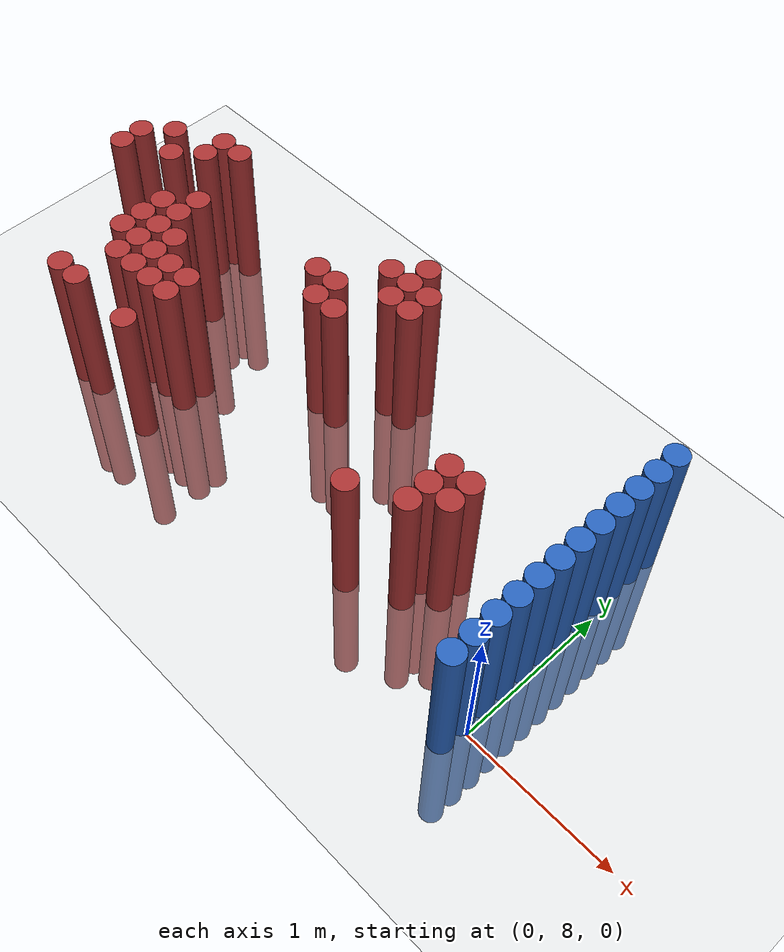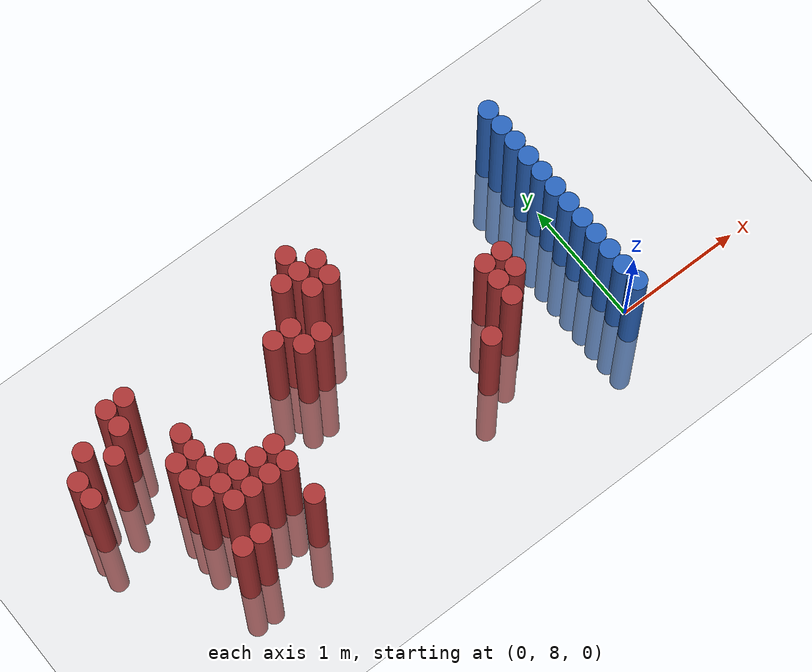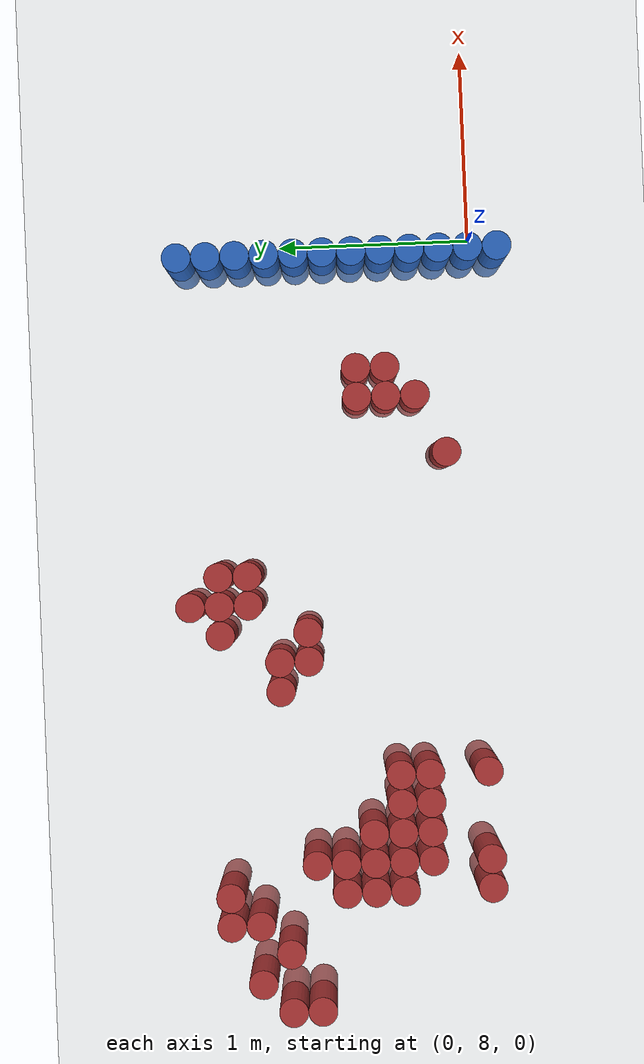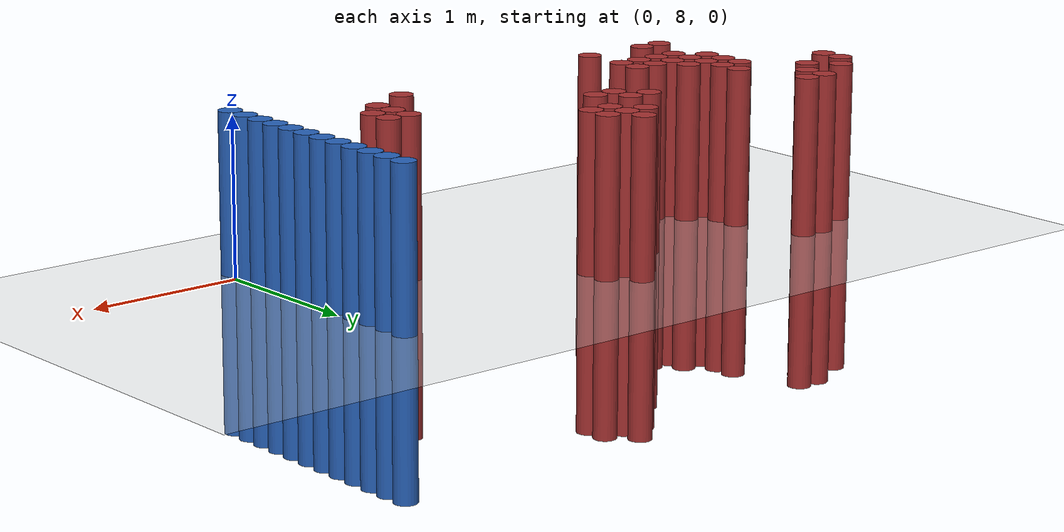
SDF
<sdf version="1.6">
 <world name="default">
  <model name="ground_plane">
   <static>1</static>
   <link name="link">
    <collision name="collision">
     <geometry><plane><normal>0 0 1</normal><size>100 100</size></plane></geometry>
     <surface><friction><ode><mu>100</mu><mu2>50</mu2></ode></friction></surface>
    </collision>
    <visual name="visual">
     <cast_shadows>0</cast_shadows>
     <geometry><plane><normal>0 0 1</normal><size>100 100</size></plane></geometry>
     <material>
      <script><uri>file://media/materials/scripts/gazebo.material</uri><name>Gazebo/Grey</name></script>
     </material>
    </visual>
   </link>
  </model>
  <model name="unit_cylinder_155">
   <static>1</static>
   <pose>-3.975000 8.925000 0.000000 0.000000 0.000000 0.000000</pose>
   <link name="link">
    <inertial>
     <mass>1</mass>
     <inertia><ixx>0.145833</ixx><ixy>0</ixy><ixz>0</ixz><iyy>0.145833</iyy><iyz>0</iyz><izz>0.125</izz></inertia>
    </inertial>
    <collision name="collision">
     <geometry><cylinder><radius>0.075000</radius><length>2</length></cylinder></geometry>
    </collision>
    <visual name="visual">
     <geometry><cylinder><radius>0.075000</radius><length>2</length></cylinder></geometry>
     <material>
      <ambient>0.648000 0.192000 0.192000 1</ambient>
      <diffuse>0.648000 0.192000 0.192000 1</diffuse>
     </material>
     <material>
      <script><name>Gazebo/Grey</name><uri>file://media/materials/scripts/gazebo.material</uri></script>
     </material>
    </visual>
   </link>
  </model>
  <model name="unit_cylinder_156">
   <static>1</static>
   <pose>-3.975000 9.075000 0.000000 0.000000 0.000000 0.000000</pose>
   <link name="link">
    <inertial>
     <mass>1</mass>
     <inertia><ixx>0.145833</ixx><ixy>0</ixy><ixz>0</ixz><iyy>0.145833</iyy><iyz>0</iyz><izz>0.125</izz></inertia>
    </inertial>
    <collision name="collision">
     <geometry><cylinder><radius>0.075000</radius><length>2</length></cylinder></geometry>
    </collision>
    <visual name="visual">
     <geometry><cylinder><radius>0.075000</radius><length>2</length></cylinder></geometry>
     <material>
      <ambient>0.648000 0.192000 0.192000 1</ambient>
      <diffuse>0.648000 0.192000 0.192000 1</diffuse>
     </material>
     <material>
      <script><name>Gazebo/Grey</name><uri>file://media/materials/scripts/gazebo.material</uri></script>
     </material>
    </visual>
   </link>
  </model>
  <model name="unit_cylinder_158">
   <static>1</static>
   <pose>-3.825000 9.225000 0.000000 0.000000 0.000000 0.000000</pose>
   <link name="link">
    <inertial>
     <mass>1</mass>
     <inertia><ixx>0.145833</ixx><ixy>0</ixy><ixz>0</ixz><iyy>0.145833</iyy><iyz>0</iyz><izz>0.125</izz></inertia>
    </inertial>
    <collision name="collision">
     <geometry><cylinder><radius>0.075000</radius><length>2</length></cylinder></geometry>
    </collision>
    <visual name="visual">
     <geometry><cylinder><radius>0.075000</radius><length>2</length></cylinder></geometry>
     <material>
      <ambient>0.648000 0.192000 0.192000 1</ambient>
      <diffuse>0.648000 0.192000 0.192000 1</diffuse>
     </material>
     <material>
      <script><name>Gazebo/Grey</name><uri>file://media/materials/scripts/gazebo.material</uri></script>
     </material>
    </visual>
   </link>
  </model>
  <model name="unit_cylinder_159">
   <static>1</static>
   <pose>-3.675000 9.075000 0.000000 0.000000 0.000000 0.000000</pose>
   <link name="link">
    <inertial>
     <mass>1</mass>
     <inertia><ixx>0.145833</ixx><ixy>0</ixy><ixz>0</ixz><iyy>0.145833</iyy><iyz>0</iyz><izz>0.125</izz></inertia>
    </inertial>
    <collision name="collision">
     <geometry><cylinder><radius>0.075000</radius><length>2</length></cylinder></geometry>
    </collision>
    <visual name="visual">
     <geometry><cylinder><radius>0.075000</radius><length>2</length></cylinder></geometry>
     <material>
      <ambient>0.648000 0.192000 0.192000 1</ambient>
      <diffuse>0.648000 0.192000 0.192000 1</diffuse>
     </material>
     <material>
      <script><name>Gazebo/Grey</name><uri>file://media/materials/scripts/gazebo.material</uri></script>
     </material>
    </visual>
   </link>
  </model>
  <model name="unit_cylinder_160">
   <static>1</static>
   <pose>-3.525000 9.225000 0.000000 0.000000 0.000000 0.000000</pose>
   <link name="link">
    <inertial>
     <mass>1</mass>
     <inertia><ixx>0.145833</ixx><ixy>0</ixy><ixz>0</ixz><iyy>0.145833</iyy><iyz>0</iyz><izz>0.125</izz></inertia>
    </inertial>
    <collision name="collision">
     <geometry><cylinder><radius>0.075000</radius><length>2</length></cylinder></geometry>
    </collision>
    <visual name="visual">
     <geometry><cylinder><radius>0.075000</radius><length>2</length></cylinder></geometry>
     <material>
      <ambient>0.648000 0.192000 0.192000 1</ambient>
      <diffuse>0.648000 0.192000 0.192000 1</diffuse>
     </material>
     <material>
      <script><name>Gazebo/Grey</name><uri>file://media/materials/scripts/gazebo.material</uri></script>
     </material>
    </visual>
   </link>
  </model>
  <model name="unit_cylinder_161">
   <static>1</static>
   <pose>-3.525000 9.375000 0.000000 0.000000 0.000000 0.000000</pose>
   <link name="link">
    <inertial>
     <mass>1</mass>
     <inertia><ixx>0.145833</ixx><ixy>0</ixy><ixz>0</ixz><iyy>0.145833</iyy><iyz>0</iyz><izz>0.125</izz></inertia>
    </inertial>
    <collision name="collision">
     <geometry><cylinder><radius>0.075000</radius><length>2</length></cylinder></geometry>
    </collision>
    <visual name="visual">
     <geometry><cylinder><radius>0.075000</radius><length>2</length></cylinder></geometry>
     <material>
      <ambient>0.648000 0.192000 0.192000 1</ambient>
      <diffuse>0.648000 0.192000 0.192000 1</diffuse>
     </material>
     <material>
      <script><name>Gazebo/Grey</name><uri>file://media/materials/scripts/gazebo.material</uri></script>
     </material>
    </visual>
   </link>
  </model>
  <model name="unit_cylinder_162">
   <static>1</static>
   <pose>-3.375000 8.025000 0.000000 0.000000 0.000000 0.000000</pose>
   <link name="link">
    <inertial>
     <mass>1</mass>
     <inertia><ixx>0.145833</ixx><ixy>0</ixy><ixz>0</ixz><iyy>0.145833</iyy><iyz>0</iyz><izz>0.125</izz></inertia>
    </inertial>
    <collision name="collision">
     <geometry><cylinder><radius>0.075000</radius><length>2</length></cylinder></geometry>
    </collision>
    <visual name="visual">
     <geometry><cylinder><radius>0.075000</radius><length>2</length></cylinder></geometry>
     <material>
      <ambient>0.648000 0.192000 0.192000 1</ambient>
      <diffuse>0.648000 0.192000 0.192000 1</diffuse>
     </material>
     <material>
      <script><name>Gazebo/Grey</name><uri>file://media/materials/scripts/gazebo.material</uri></script>
     </material>
    </visual>
   </link>
  </model>
  <model name="unit_cylinder_163">
   <static>1</static>
   <pose>-3.375000 8.475000 0.000000 0.000000 0.000000 0.000000</pose>
   <link name="link">
    <inertial>
     <mass>1</mass>
     <inertia><ixx>0.145833</ixx><ixy>0</ixy><ixz>0</ixz><iyy>0.145833</iyy><iyz>0</iyz><izz>0.125</izz></inertia>
    </inertial>
    <collision name="collision">
     <geometry><cylinder><radius>0.075000</radius><length>2</length></cylinder></geometry>
    </collision>
    <visual name="visual">
     <geometry><cylinder><radius>0.075000</radius><length>2</length></cylinder></geometry>
     <material>
      <ambient>0.648000 0.192000 0.192000 1</ambient>
      <diffuse>0.648000 0.192000 0.192000 1</diffuse>
     </material>
     <material>
      <script><name>Gazebo/Grey</name><uri>file://media/materials/scripts/gazebo.material</uri></script>
     </material>
    </visual>
   </link>
  </model>
  <model name="unit_cylinder_164">
   <static>1</static>
   <pose>-3.375000 8.625000 0.000000 0.000000 0.000000 0.000000</pose>
   <link name="link">
    <inertial>
     <mass>1</mass>
     <inertia><ixx>0.145833</ixx><ixy>0</ixy><ixz>0</ixz><iyy>0.145833</iyy><iyz>0</iyz><izz>0.125</izz></inertia>
    </inertial>
    <collision name="collision">
     <geometry><cylinder><radius>0.075000</radius><length>2</length></cylinder></geometry>
    </collision>
    <visual name="visual">
     <geometry><cylinder><radius>0.075000</radius><length>2</length></cylinder></geometry>
     <material>
      <ambient>0.648000 0.192000 0.192000 1</ambient>
      <diffuse>0.648000 0.192000 0.192000 1</diffuse>
     </material>
     <material>
      <script><name>Gazebo/Grey</name><uri>file://media/materials/scripts/gazebo.material</uri></script>
     </material>
    </visual>
   </link>
  </model>
  <model name="unit_cylinder_165">
   <static>1</static>
   <pose>-3.375000 8.775000 0.000000 0.000000 0.000000 0.000000</pose>
   <link name="link">
    <inertial>
     <mass>1</mass>
     <inertia><ixx>0.145833</ixx><ixy>0</ixy><ixz>0</ixz><iyy>0.145833</iyy><iyz>0</iyz><izz>0.125</izz></inertia>
    </inertial>
    <collision name="collision">
     <geometry><cylinder><radius>0.075000</radius><length>2</length></cylinder></geometry>
    </collision>
    <visual name="visual">
     <geometry><cylinder><radius>0.075000</radius><length>2</length></cylinder></geometry>
     <material>
      <ambient>0.648000 0.192000 0.192000 1</ambient>
      <diffuse>0.648000 0.192000 0.192000 1</diffuse>
     </material>
     <material>
      <script><name>Gazebo/Grey</name><uri>file://media/materials/scripts/gazebo.material</uri></script>
     </material>
    </visual>
   </link>
  </model>
  <model name="unit_cylinder_166">
   <static>1</static>
   <pose>-3.375000 9.375000 0.000000 0.000000 0.000000 0.000000</pose>
   <link name="link">
    <inertial>
     <mass>1</mass>
     <inertia><ixx>0.145833</ixx><ixy>0</ixy><ixz>0</ixz><iyy>0.145833</iyy><iyz>0</iyz><izz>0.125</izz></inertia>
    </inertial>
    <collision name="collision">
     <geometry><cylinder><radius>0.075000</radius><length>2</length></cylinder></geometry>
    </collision>
    <visual name="visual">
     <geometry><cylinder><radius>0.075000</radius><length>2</length></cylinder></geometry>
     <material>
      <ambient>0.648000 0.192000 0.192000 1</ambient>
      <diffuse>0.648000 0.192000 0.192000 1</diffuse>
     </material>
     <material>
      <script><name>Gazebo/Grey</name><uri>file://media/materials/scripts/gazebo.material</uri></script>
     </material>
    </visual>
   </link>
  </model>
  <model name="unit_cylinder_168">
   <static>1</static>
   <pose>-3.225000 8.025000 0.000000 0.000000 0.000000 0.000000</pose>
   <link name="link">
    <inertial>
     <mass>1</mass>
     <inertia><ixx>0.145833</ixx><ixy>0</ixy><ixz>0</ixz><iyy>0.145833</iyy><iyz>0</iyz><izz>0.125</izz></inertia>
    </inertial>
    <collision name="collision">
     <geometry><cylinder><radius>0.075000</radius><length>2</length></cylinder></geometry>
    </collision>
    <visual name="visual">
     <geometry><cylinder><radius>0.075000</radius><length>2</length></cylinder></geometry>
     <material>
      <ambient>0.648000 0.192000 0.192000 1</ambient>
      <diffuse>0.648000 0.192000 0.192000 1</diffuse>
     </material>
     <material>
      <script><name>Gazebo/Grey</name><uri>file://media/materials/scripts/gazebo.material</uri></script>
     </material>
    </visual>
   </link>
  </model>
  <model name="unit_cylinder_169">
   <static>1</static>
   <pose>-3.225000 8.325000 0.000000 0.000000 0.000000 0.000000</pose>
   <link name="link">
    <inertial>
     <mass>1</mass>
     <inertia><ixx>0.145833</ixx><ixy>0</ixy><ixz>0</ixz><iyy>0.145833</iyy><iyz>0</iyz><izz>0.125</izz></inertia>
    </inertial>
    <collision name="collision">
     <geometry><cylinder><radius>0.075000</radius><length>2</length></cylinder></geometry>
    </collision>
    <visual name="visual">
     <geometry><cylinder><radius>0.075000</radius><length>2</length></cylinder></geometry>
     <material>
      <ambient>0.648000 0.192000 0.192000 1</ambient>
      <diffuse>0.648000 0.192000 0.192000 1</diffuse>
     </material>
     <material>
      <script><name>Gazebo/Grey</name><uri>file://media/materials/scripts/gazebo.material</uri></script>
     </material>
    </visual>
   </link>
  </model>
  <model name="unit_cylinder_170">
   <static>1</static>
   <pose>-3.225000 8.475000 0.000000 0.000000 0.000000 0.000000</pose>
   <link name="link">
    <inertial>
     <mass>1</mass>
     <inertia><ixx>0.145833</ixx><ixy>0</ixy><ixz>0</ixz><iyy>0.145833</iyy><iyz>0</iyz><izz>0.125</izz></inertia>
    </inertial>
    <collision name="collision">
     <geometry><cylinder><radius>0.075000</radius><length>2</length></cylinder></geometry>
    </collision>
    <visual name="visual">
     <geometry><cylinder><radius>0.075000</radius><length>2</length></cylinder></geometry>
     <material>
      <ambient>0.648000 0.192000 0.192000 1</ambient>
      <diffuse>0.648000 0.192000 0.192000 1</diffuse>
     </material>
     <material>
      <script><name>Gazebo/Grey</name><uri>file://media/materials/scripts/gazebo.material</uri></script>
     </material>
    </visual>
   </link>
  </model>
  <model name="unit_cylinder_171">
   <static>1</static>
   <pose>-3.225000 8.625000 0.000000 0.000000 0.000000 0.000000</pose>
   <link name="link">
    <inertial>
     <mass>1</mass>
     <inertia><ixx>0.145833</ixx><ixy>0</ixy><ixz>0</ixz><iyy>0.145833</iyy><iyz>0</iyz><izz>0.125</izz></inertia>
    </inertial>
    <collision name="collision">
     <geometry><cylinder><radius>0.075000</radius><length>2</length></cylinder></geometry>
    </collision>
    <visual name="visual">
     <geometry><cylinder><radius>0.075000</radius><length>2</length></cylinder></geometry>
     <material>
      <ambient>0.648000 0.192000 0.192000 1</ambient>
      <diffuse>0.648000 0.192000 0.192000 1</diffuse>
     </material>
     <material>
      <script><name>Gazebo/Grey</name><uri>file://media/materials/scripts/gazebo.material</uri></script>
     </material>
    </visual>
   </link>
  </model>
  <model name="unit_cylinder_172">
   <static>1</static>
   <pose>-3.225000 8.775000 0.000000 0.000000 0.000000 0.000000</pose>
   <link name="link">
    <inertial>
     <mass>1</mass>
     <inertia><ixx>0.145833</ixx><ixy>0</ixy><ixz>0</ixz><iyy>0.145833</iyy><iyz>0</iyz><izz>0.125</izz></inertia>
    </inertial>
    <collision name="collision">
     <geometry><cylinder><radius>0.075000</radius><length>2</length></cylinder></geometry>
    </collision>
    <visual name="visual">
     <geometry><cylinder><radius>0.075000</radius><length>2</length></cylinder></geometry>
     <material>
      <ambient>0.648000 0.192000 0.192000 1</ambient>
      <diffuse>0.648000 0.192000 0.192000 1</diffuse>
     </material>
     <material>
      <script><name>Gazebo/Grey</name><uri>file://media/materials/scripts/gazebo.material</uri></script>
     </material>
    </visual>
   </link>
  </model>
  <model name="unit_cylinder_173">
   <static>1</static>
   <pose>-3.225000 8.925000 0.000000 0.000000 0.000000 0.000000</pose>
   <link name="link">
    <inertial>
     <mass>1</mass>
     <inertia><ixx>0.145833</ixx><ixy>0</ixy><ixz>0</ixz><iyy>0.145833</iyy><iyz>0</iyz><izz>0.125</izz></inertia>
    </inertial>
    <collision name="collision">
     <geometry><cylinder><radius>0.075000</radius><length>2</length></cylinder></geometry>
    </collision>
    <visual name="visual">
     <geometry><cylinder><radius>0.075000</radius><length>2</length></cylinder></geometry>
     <material>
      <ambient>0.648000 0.192000 0.192000 1</ambient>
      <diffuse>0.648000 0.192000 0.192000 1</diffuse>
     </material>
     <material>
      <script><name>Gazebo/Grey</name><uri>file://media/materials/scripts/gazebo.material</uri></script>
     </material>
    </visual>
   </link>
  </model>
  <model name="unit_cylinder_175">
   <static>1</static>
   <pose>-3.075000 8.325000 0.000000 0.000000 0.000000 0.000000</pose>
   <link name="link">
    <inertial>
     <mass>1</mass>
     <inertia><ixx>0.145833</ixx><ixy>0</ixy><ixz>0</ixz><iyy>0.145833</iyy><iyz>0</iyz><izz>0.125</izz></inertia>
    </inertial>
    <collision name="collision">
     <geometry><cylinder><radius>0.075000</radius><length>2</length></cylinder></geometry>
    </collision>
    <visual name="visual">
     <geometry><cylinder><radius>0.075000</radius><length>2</length></cylinder></geometry>
     <material>
      <ambient>0.648000 0.192000 0.192000 1</ambient>
      <diffuse>0.648000 0.192000 0.192000 1</diffuse>
     </material>
     <material>
      <script><name>Gazebo/Grey</name><uri>file://media/materials/scripts/gazebo.material</uri></script>
     </material>
    </visual>
   </link>
  </model>
  <model name="unit_cylinder_176">
   <static>1</static>
   <pose>-3.075000 8.475000 0.000000 0.000000 0.000000 0.000000</pose>
   <link name="link">
    <inertial>
     <mass>1</mass>
     <inertia><ixx>0.145833</ixx><ixy>0</ixy><ixz>0</ixz><iyy>0.145833</iyy><iyz>0</iyz><izz>0.125</izz></inertia>
    </inertial>
    <collision name="collision">
     <geometry><cylinder><radius>0.075000</radius><length>2</length></cylinder></geometry>
    </collision>
    <visual name="visual">
     <geometry><cylinder><radius>0.075000</radius><length>2</length></cylinder></geometry>
     <material>
      <ambient>0.648000 0.192000 0.192000 1</ambient>
      <diffuse>0.648000 0.192000 0.192000 1</diffuse>
     </material>
     <material>
      <script><name>Gazebo/Grey</name><uri>file://media/materials/scripts/gazebo.material</uri></script>
     </material>
    </visual>
   </link>
  </model>
  <model name="unit_cylinder_177">
   <static>1</static>
   <pose>-3.075000 8.625000 0.000000 0.000000 0.000000 0.000000</pose>
   <link name="link">
    <inertial>
     <mass>1</mass>
     <inertia><ixx>0.145833</ixx><ixy>0</ixy><ixz>0</ixz><iyy>0.145833</iyy><iyz>0</iyz><izz>0.125</izz></inertia>
    </inertial>
    <collision name="collision">
     <geometry><cylinder><radius>0.075000</radius><length>2</length></cylinder></geometry>
    </collision>
    <visual name="visual">
     <geometry><cylinder><radius>0.075000</radius><length>2</length></cylinder></geometry>
     <material>
      <ambient>0.648000 0.192000 0.192000 1</ambient>
      <diffuse>0.648000 0.192000 0.192000 1</diffuse>
     </material>
     <material>
      <script><name>Gazebo/Grey</name><uri>file://media/materials/scripts/gazebo.material</uri></script>
     </material>
    </visual>
   </link>
  </model>
  <model name="unit_cylinder_180">
   <static>1</static>
   <pose>-2.925000 8.325000 0.000000 0.000000 0.000000 0.000000</pose>
   <link name="link">
    <inertial>
     <mass>1</mass>
     <inertia><ixx>0.145833</ixx><ixy>0</ixy><ixz>0</ixz><iyy>0.145833</iyy><iyz>0</iyz><izz>0.125</izz></inertia>
    </inertial>
    <collision name="collision">
     <geometry><cylinder><radius>0.075000</radius><length>2</length></cylinder></geometry>
    </collision>
    <visual name="visual">
     <geometry><cylinder><radius>0.075000</radius><length>2</length></cylinder></geometry>
     <material>
      <ambient>0.648000 0.192000 0.192000 1</ambient>
      <diffuse>0.648000 0.192000 0.192000 1</diffuse>
     </material>
     <material>
      <script><name>Gazebo/Grey</name><uri>file://media/materials/scripts/gazebo.material</uri></script>
     </material>
    </visual>
   </link>
  </model>
  <model name="unit_cylinder_181">
   <static>1</static>
   <pose>-2.925000 8.475000 0.000000 0.000000 0.000000 0.000000</pose>
   <link name="link">
    <inertial>
     <mass>1</mass>
     <inertia><ixx>0.145833</ixx><ixy>0</ixy><ixz>0</ixz><iyy>0.145833</iyy><iyz>0</iyz><izz>0.125</izz></inertia>
    </inertial>
    <collision name="collision">
     <geometry><cylinder><radius>0.075000</radius><length>2</length></cylinder></geometry>
    </collision>
    <visual name="visual">
     <geometry><cylinder><radius>0.075000</radius><length>2</length></cylinder></geometry>
     <material>
      <ambient>0.648000 0.192000 0.192000 1</ambient>
      <diffuse>0.648000 0.192000 0.192000 1</diffuse>
     </material>
     <material>
      <script><name>Gazebo/Grey</name><uri>file://media/materials/scripts/gazebo.material</uri></script>
     </material>
    </visual>
   </link>
  </model>
  <model name="unit_cylinder_187">
   <static>1</static>
   <pose>-2.775000 8.025000 0.000000 0.000000 0.000000 0.000000</pose>
   <link name="link">
    <inertial>
     <mass>1</mass>
     <inertia><ixx>0.145833</ixx><ixy>0</ixy><ixz>0</ixz><iyy>0.145833</iyy><iyz>0</iyz><izz>0.125</izz></inertia>
    </inertial>
    <collision name="collision">
     <geometry><cylinder><radius>0.075000</radius><length>2</length></cylinder></geometry>
    </collision>
    <visual name="visual">
     <geometry><cylinder><radius>0.075000</radius><length>2</length></cylinder></geometry>
     <material>
      <ambient>0.648000 0.192000 0.192000 1</ambient>
      <diffuse>0.648000 0.192000 0.192000 1</diffuse>
     </material>
     <material>
      <script><name>Gazebo/Grey</name><uri>file://media/materials/scripts/gazebo.material</uri></script>
     </material>
    </visual>
   </link>
  </model>
  <model name="unit_cylinder_188">
   <static>1</static>
   <pose>-2.775000 8.325000 0.000000 0.000000 0.000000 0.000000</pose>
   <link name="link">
    <inertial>
     <mass>1</mass>
     <inertia><ixx>0.145833</ixx><ixy>0</ixy><ixz>0</ixz><iyy>0.145833</iyy><iyz>0</iyz><izz>0.125</izz></inertia>
    </inertial>
    <collision name="collision">
     <geometry><cylinder><radius>0.075000</radius><length>2</length></cylinder></geometry>
    </collision>
    <visual name="visual">
     <geometry><cylinder><radius>0.075000</radius><length>2</length></cylinder></geometry>
     <material>
      <ambient>0.648000 0.192000 0.192000 1</ambient>
      <diffuse>0.648000 0.192000 0.192000 1</diffuse>
     </material>
     <material>
      <script><name>Gazebo/Grey</name><uri>file://media/materials/scripts/gazebo.material</uri></script>
     </material>
    </visual>
   </link>
  </model>
  <model name="unit_cylinder_189">
   <static>1</static>
   <pose>-2.775000 8.475000 0.000000 0.000000 0.000000 0.000000</pose>
   <link name="link">
    <inertial>
     <mass>1</mass>
     <inertia><ixx>0.145833</ixx><ixy>0</ixy><ixz>0</ixz><iyy>0.145833</iyy><iyz>0</iyz><izz>0.125</izz></inertia>
    </inertial>
    <collision name="collision">
     <geometry><cylinder><radius>0.075000</radius><length>2</length></cylinder></geometry>
    </collision>
    <visual name="visual">
     <geometry><cylinder><radius>0.075000</radius><length>2</length></cylinder></geometry>
     <material>
      <ambient>0.648000 0.192000 0.192000 1</ambient>
      <diffuse>0.648000 0.192000 0.192000 1</diffuse>
     </material>
     <material>
      <script><name>Gazebo/Grey</name><uri>file://media/materials/scripts/gazebo.material</uri></script>
     </material>
    </visual>
   </link>
  </model>
  <model name="unit_cylinder_201">
   <static>1</static>
   <pose>-2.325000 9.075000 0.000000 0.000000 0.000000 0.000000</pose>
   <link name="link">
    <inertial>
     <mass>1</mass>
     <inertia><ixx>0.145833</ixx><ixy>0</ixy><ixz>0</ixz><iyy>0.145833</iyy><iyz>0</iyz><izz>0.125</izz></inertia>
    </inertial>
    <collision name="collision">
     <geometry><cylinder><radius>0.075000</radius><length>2</length></cylinder></geometry>
    </collision>
    <visual name="visual">
     <geometry><cylinder><radius>0.075000</radius><length>2</length></cylinder></geometry>
     <material>
      <ambient>0.648000 0.192000 0.192000 1</ambient>
      <diffuse>0.648000 0.192000 0.192000 1</diffuse>
     </material>
     <material>
      <script><name>Gazebo/Grey</name><uri>file://media/materials/scripts/gazebo.material</uri></script>
     </material>
    </visual>
   </link>
  </model>
  <model name="unit_cylinder_204">
   <static>1</static>
   <pose>-2.175000 8.925000 0.000000 0.000000 0.000000 0.000000</pose>
   <link name="link">
    <inertial>
     <mass>1</mass>
     <inertia><ixx>0.145833</ixx><ixy>0</ixy><ixz>0</ixz><iyy>0.145833</iyy><iyz>0</iyz><izz>0.125</izz></inertia>
    </inertial>
    <collision name="collision">
     <geometry><cylinder><radius>0.075000</radius><length>2</length></cylinder></geometry>
    </collision>
    <visual name="visual">
     <geometry><cylinder><radius>0.075000</radius><length>2</length></cylinder></geometry>
     <material>
      <ambient>0.648000 0.192000 0.192000 1</ambient>
      <diffuse>0.648000 0.192000 0.192000 1</diffuse>
     </material>
     <material>
      <script><name>Gazebo/Grey</name><uri>file://media/materials/scripts/gazebo.material</uri></script>
     </material>
    </visual>
   </link>
  </model>
  <model name="unit_cylinder_205">
   <static>1</static>
   <pose>-2.175000 9.075000 0.000000 0.000000 0.000000 0.000000</pose>
   <link name="link">
    <inertial>
     <mass>1</mass>
     <inertia><ixx>0.145833</ixx><ixy>0</ixy><ixz>0</ixz><iyy>0.145833</iyy><iyz>0</iyz><izz>0.125</izz></inertia>
    </inertial>
    <collision name="collision">
     <geometry><cylinder><radius>0.075000</radius><length>2</length></cylinder></geometry>
    </collision>
    <visual name="visual">
     <geometry><cylinder><radius>0.075000</radius><length>2</length></cylinder></geometry>
     <material>
      <ambient>0.648000 0.192000 0.192000 1</ambient>
      <diffuse>0.648000 0.192000 0.192000 1</diffuse>
     </material>
     <material>
      <script><name>Gazebo/Grey</name><uri>file://media/materials/scripts/gazebo.material</uri></script>
     </material>
    </visual>
   </link>
  </model>
  <model name="unit_cylinder_207">
   <static>1</static>
   <pose>-2.025000 8.925000 0.000000 0.000000 0.000000 0.000000</pose>
   <link name="link">
    <inertial>
     <mass>1</mass>
     <inertia><ixx>0.145833</ixx><ixy>0</ixy><ixz>0</ixz><iyy>0.145833</iyy><iyz>0</iyz><izz>0.125</izz></inertia>
    </inertial>
    <collision name="collision">
     <geometry><cylinder><radius>0.075000</radius><length>2</length></cylinder></geometry>
    </collision>
    <visual name="visual">
     <geometry><cylinder><radius>0.075000</radius><length>2</length></cylinder></geometry>
     <material>
      <ambient>0.648000 0.192000 0.192000 1</ambient>
      <diffuse>0.648000 0.192000 0.192000 1</diffuse>
     </material>
     <material>
      <script><name>Gazebo/Grey</name><uri>file://media/materials/scripts/gazebo.material</uri></script>
     </material>
    </visual>
   </link>
  </model>
  <model name="unit_cylinder_208">
   <static>1</static>
   <pose>-2.025000 9.375000 0.000000 0.000000 0.000000 0.000000</pose>
   <link name="link">
    <inertial>
     <mass>1</mass>
     <inertia><ixx>0.145833</ixx><ixy>0</ixy><ixz>0</ixz><iyy>0.145833</iyy><iyz>0</iyz><izz>0.125</izz></inertia>
    </inertial>
    <collision name="collision">
     <geometry><cylinder><radius>0.075000</radius><length>2</length></cylinder></geometry>
    </collision>
    <visual name="visual">
     <geometry><cylinder><radius>0.075000</radius><length>2</length></cylinder></geometry>
     <material>
      <ambient>0.648000 0.192000 0.192000 1</ambient>
      <diffuse>0.648000 0.192000 0.192000 1</diffuse>
     </material>
     <material>
      <script><name>Gazebo/Grey</name><uri>file://media/materials/scripts/gazebo.material</uri></script>
     </material>
    </visual>
   </link>
  </model>
  <model name="unit_cylinder_209">
   <static>1</static>
   <pose>-1.875000 9.225000 0.000000 0.000000 0.000000 0.000000</pose>
   <link name="link">
    <inertial>
     <mass>1</mass>
     <inertia><ixx>0.145833</ixx><ixy>0</ixy><ixz>0</ixz><iyy>0.145833</iyy><iyz>0</iyz><izz>0.125</izz></inertia>
    </inertial>
    <collision name="collision">
     <geometry><cylinder><radius>0.075000</radius><length>2</length></cylinder></geometry>
    </collision>
    <visual name="visual">
     <geometry><cylinder><radius>0.075000</radius><length>2</length></cylinder></geometry>
     <material>
      <ambient>0.648000 0.192000 0.192000 1</ambient>
      <diffuse>0.648000 0.192000 0.192000 1</diffuse>
     </material>
     <material>
      <script><name>Gazebo/Grey</name><uri>file://media/materials/scripts/gazebo.material</uri></script>
     </material>
    </visual>
   </link>
  </model>
  <model name="unit_cylinder_210">
   <static>1</static>
   <pose>-1.875000 9.375000 0.000000 0.000000 0.000000 0.000000</pose>
   <link name="link">
    <inertial>
     <mass>1</mass>
     <inertia><ixx>0.145833</ixx><ixy>0</ixy><ixz>0</ixz><iyy>0.145833</iyy><iyz>0</iyz><izz>0.125</izz></inertia>
    </inertial>
    <collision name="collision">
     <geometry><cylinder><radius>0.075000</radius><length>2</length></cylinder></geometry>
    </collision>
    <visual name="visual">
     <geometry><cylinder><radius>0.075000</radius><length>2</length></cylinder></geometry>
     <material>
      <ambient>0.648000 0.192000 0.192000 1</ambient>
      <diffuse>0.648000 0.192000 0.192000 1</diffuse>
     </material>
     <material>
      <script><name>Gazebo/Grey</name><uri>file://media/materials/scripts/gazebo.material</uri></script>
     </material>
    </visual>
   </link>
  </model>
  <model name="unit_cylinder_211">
   <static>1</static>
   <pose>-1.875000 9.525000 0.000000 0.000000 0.000000 0.000000</pose>
   <link name="link">
    <inertial>
     <mass>1</mass>
     <inertia><ixx>0.145833</ixx><ixy>0</ixy><ixz>0</ixz><iyy>0.145833</iyy><iyz>0</iyz><izz>0.125</izz></inertia>
    </inertial>
    <collision name="collision">
     <geometry><cylinder><radius>0.075000</radius><length>2</length></cylinder></geometry>
    </collision>
    <visual name="visual">
     <geometry><cylinder><radius>0.075000</radius><length>2</length></cylinder></geometry>
     <material>
      <ambient>0.648000 0.192000 0.192000 1</ambient>
      <diffuse>0.648000 0.192000 0.192000 1</diffuse>
     </material>
     <material>
      <script><name>Gazebo/Grey</name><uri>file://media/materials/scripts/gazebo.material</uri></script>
     </material>
    </visual>
   </link>
  </model>
  <model name="unit_cylinder_213">
   <static>1</static>
   <pose>-1.725000 9.225000 0.000000 0.000000 0.000000 0.000000</pose>
   <link name="link">
    <inertial>
     <mass>1</mass>
     <inertia><ixx>0.145833</ixx><ixy>0</ixy><ixz>0</ixz><iyy>0.145833</iyy><iyz>0</iyz><izz>0.125</izz></inertia>
    </inertial>
    <collision name="collision">
     <geometry><cylinder><radius>0.075000</radius><length>2</length></cylinder></geometry>
    </collision>
    <visual name="visual">
     <geometry><cylinder><radius>0.075000</radius><length>2</length></cylinder></geometry>
     <material>
      <ambient>0.648000 0.192000 0.192000 1</ambient>
      <diffuse>0.648000 0.192000 0.192000 1</diffuse>
     </material>
     <material>
      <script><name>Gazebo/Grey</name><uri>file://media/materials/scripts/gazebo.material</uri></script>
     </material>
    </visual>
   </link>
  </model>
  <model name="unit_cylinder_214">
   <static>1</static>
   <pose>-1.725000 9.375000 0.000000 0.000000 0.000000 0.000000</pose>
   <link name="link">
    <inertial>
     <mass>1</mass>
     <inertia><ixx>0.145833</ixx><ixy>0</ixy><ixz>0</ixz><iyy>0.145833</iyy><iyz>0</iyz><izz>0.125</izz></inertia>
    </inertial>
    <collision name="collision">
     <geometry><cylinder><radius>0.075000</radius><length>2</length></cylinder></geometry>
    </collision>
    <visual name="visual">
     <geometry><cylinder><radius>0.075000</radius><length>2</length></cylinder></geometry>
     <material>
      <ambient>0.648000 0.192000 0.192000 1</ambient>
      <diffuse>0.648000 0.192000 0.192000 1</diffuse>
     </material>
     <material>
      <script><name>Gazebo/Grey</name><uri>file://media/materials/scripts/gazebo.material</uri></script>
     </material>
    </visual>
   </link>
  </model>
  <model name="unit_cylinder_219">
   <static>1</static>
   <pose>-1.125000 8.175000 0.000000 0.000000 0.000000 0.000000</pose>
   <link name="link">
    <inertial>
     <mass>1</mass>
     <inertia><ixx>0.145833</ixx><ixy>0</ixy><ixz>0</ixz><iyy>0.145833</iyy><iyz>0</iyz><izz>0.125</izz></inertia>
    </inertial>
    <collision name="collision">
     <geometry><cylinder><radius>0.075000</radius><length>2</length></cylinder></geometry>
    </collision>
    <visual name="visual">
     <geometry><cylinder><radius>0.075000</radius><length>2</length></cylinder></geometry>
     <material>
      <ambient>0.648000 0.192000 0.192000 1</ambient>
      <diffuse>0.648000 0.192000 0.192000 1</diffuse>
     </material>
     <material>
      <script><name>Gazebo/Grey</name><uri>file://media/materials/scripts/gazebo.material</uri></script>
     </material>
    </visual>
   </link>
  </model>
  <model name="unit_cylinder_221">
   <static>1</static>
   <pose>-0.825000 8.325000 0.000000 0.000000 0.000000 0.000000</pose>
   <link name="link">
    <inertial>
     <mass>1</mass>
     <inertia><ixx>0.145833</ixx><ixy>0</ixy><ixz>0</ixz><iyy>0.145833</iyy><iyz>0</iyz><izz>0.125</izz></inertia>
    </inertial>
    <collision name="collision">
     <geometry><cylinder><radius>0.075000</radius><length>2</length></cylinder></geometry>
    </collision>
    <visual name="visual">
     <geometry><cylinder><radius>0.075000</radius><length>2</length></cylinder></geometry>
     <material>
      <ambient>0.648000 0.192000 0.192000 1</ambient>
      <diffuse>0.648000 0.192000 0.192000 1</diffuse>
     </material>
     <material>
      <script><name>Gazebo/Grey</name><uri>file://media/materials/scripts/gazebo.material</uri></script>
     </material>
    </visual>
   </link>
  </model>
  <model name="unit_cylinder_222">
   <static>1</static>
   <pose>-0.825000 8.475000 0.000000 0.000000 0.000000 0.000000</pose>
   <link name="link">
    <inertial>
     <mass>1</mass>
     <inertia><ixx>0.145833</ixx><ixy>0</ixy><ixz>0</ixz><iyy>0.145833</iyy><iyz>0</iyz><izz>0.125</izz></inertia>
    </inertial>
    <collision name="collision">
     <geometry><cylinder><radius>0.075000</radius><length>2</length></cylinder></geometry>
    </collision>
    <visual name="visual">
     <geometry><cylinder><radius>0.075000</radius><length>2</length></cylinder></geometry>
     <material>
      <ambient>0.648000 0.192000 0.192000 1</ambient>
      <diffuse>0.648000 0.192000 0.192000 1</diffuse>
     </material>
     <material>
      <script><name>Gazebo/Grey</name><uri>file://media/materials/scripts/gazebo.material</uri></script>
     </material>
    </visual>
   </link>
  </model>
  <model name="unit_cylinder_223">
   <static>1</static>
   <pose>-0.825000 8.625000 0.000000 0.000000 0.000000 0.000000</pose>
   <link name="link">
    <inertial>
     <mass>1</mass>
     <inertia><ixx>0.145833</ixx><ixy>0</ixy><ixz>0</ixz><iyy>0.145833</iyy><iyz>0</iyz><izz>0.125</izz></inertia>
    </inertial>
    <collision name="collision">
     <geometry><cylinder><radius>0.075000</radius><length>2</length></cylinder></geometry>
    </collision>
    <visual name="visual">
     <geometry><cylinder><radius>0.075000</radius><length>2</length></cylinder></geometry>
     <material>
      <ambient>0.648000 0.192000 0.192000 1</ambient>
      <diffuse>0.648000 0.192000 0.192000 1</diffuse>
     </material>
     <material>
      <script><name>Gazebo/Grey</name><uri>file://media/materials/scripts/gazebo.material</uri></script>
     </material>
    </visual>
   </link>
  </model>
  <model name="unit_cylinder_226">
   <static>1</static>
   <pose>-0.675000 8.475000 0.000000 0.000000 0.000000 0.000000</pose>
   <link name="link">
    <inertial>
     <mass>1</mass>
     <inertia><ixx>0.145833</ixx><ixy>0</ixy><ixz>0</ixz><iyy>0.145833</iyy><iyz>0</iyz><izz>0.125</izz></inertia>
    </inertial>
    <collision name="collision">
     <geometry><cylinder><radius>0.075000</radius><length>2</length></cylinder></geometry>
    </collision>
    <visual name="visual">
     <geometry><cylinder><radius>0.075000</radius><length>2</length></cylinder></geometry>
     <material>
      <ambient>0.648000 0.192000 0.192000 1</ambient>
      <diffuse>0.648000 0.192000 0.192000 1</diffuse>
     </material>
     <material>
      <script><name>Gazebo/Grey</name><uri>file://media/materials/scripts/gazebo.material</uri></script>
     </material>
    </visual>
   </link>
  </model>
  <model name="unit_cylinder_227">
   <static>1</static>
   <pose>-0.675000 8.625000 0.000000 0.000000 0.000000 0.000000</pose>
   <link name="link">
    <inertial>
     <mass>1</mass>
     <inertia><ixx>0.145833</ixx><ixy>0</ixy><ixz>0</ixz><iyy>0.145833</iyy><iyz>0</iyz><izz>0.125</izz></inertia>
    </inertial>
    <collision name="collision">
     <geometry><cylinder><radius>0.075000</radius><length>2</length></cylinder></geometry>
    </collision>
    <visual name="visual">
     <geometry><cylinder><radius>0.075000</radius><length>2</length></cylinder></geometry>
     <material>
      <ambient>0.648000 0.192000 0.192000 1</ambient>
      <diffuse>0.648000 0.192000 0.192000 1</diffuse>
     </material>
     <material>
      <script><name>Gazebo/Grey</name><uri>file://media/materials/scripts/gazebo.material</uri></script>
     </material>
    </visual>
   </link>
  </model>
  <model name="unit_cylinder_252">
   <static>1</static>
   <pose>-0.075000 7.875000 0.000000 0.000000 0.000000 0.000000</pose>
   <link name="link">
    <inertial>
     <mass>1</mass>
     <inertia><ixx>0.145833</ixx><ixy>0</ixy><ixz>0</ixz><iyy>0.145833</iyy><iyz>0</iyz><izz>0.125</izz></inertia>
    </inertial>
    <collision name="collision">
     <geometry><cylinder><radius>0.075000</radius><length>2</length></cylinder></geometry>
    </collision>
    <visual name="visual">
     <geometry><cylinder><radius>0.075000</radius><length>2</length></cylinder></geometry>
     <material>
      <ambient>0.152000 0.379000 0.720000 1</ambient>
      <diffuse>0.152000 0.379000 0.720000 1</diffuse>
     </material>
     <material>
      <script><name>Gazebo/Grey</name><uri>file://media/materials/scripts/gazebo.material</uri></script>
     </material>
    </visual>
   </link>
  </model>
  <model name="unit_cylinder_253">
   <static>1</static>
   <pose>-0.075000 8.025000 0.000000 0.000000 0.000000 0.000000</pose>
   <link name="link">
    <inertial>
     <mass>1</mass>
     <inertia><ixx>0.145833</ixx><ixy>0</ixy><ixz>0</ixz><iyy>0.145833</iyy><iyz>0</iyz><izz>0.125</izz></inertia>
    </inertial>
    <collision name="collision">
     <geometry><cylinder><radius>0.075000</radius><length>2</length></cylinder></geometry>
    </collision>
    <visual name="visual">
     <geometry><cylinder><radius>0.075000</radius><length>2</length></cylinder></geometry>
     <material>
      <ambient>0.152000 0.379000 0.720000 1</ambient>
      <diffuse>0.152000 0.379000 0.720000 1</diffuse>
     </material>
     <material>
      <script><name>Gazebo/Grey</name><uri>file://media/materials/scripts/gazebo.material</uri></script>
     </material>
    </visual>
   </link>
  </model>
  <model name="unit_cylinder_254">
   <static>1</static>
   <pose>-0.075000 8.175000 0.000000 0.000000 0.000000 0.000000</pose>
   <link name="link">
    <inertial>
     <mass>1</mass>
     <inertia><ixx>0.145833</ixx><ixy>0</ixy><ixz>0</ixz><iyy>0.145833</iyy><iyz>0</iyz><izz>0.125</izz></inertia>
    </inertial>
    <collision name="collision">
     <geometry><cylinder><radius>0.075000</radius><length>2</length></cylinder></geometry>
    </collision>
    <visual name="visual">
     <geometry><cylinder><radius>0.075000</radius><length>2</length></cylinder></geometry>
     <material>
      <ambient>0.152000 0.379000 0.720000 1</ambient>
      <diffuse>0.152000 0.379000 0.720000 1</diffuse>
     </material>
     <material>
      <script><name>Gazebo/Grey</name><uri>file://media/materials/scripts/gazebo.material</uri></script>
     </material>
    </visual>
   </link>
  </model>
  <model name="unit_cylinder_255">
   <static>1</static>
   <pose>-0.075000 8.325000 0.000000 0.000000 0.000000 0.000000</pose>
   <link name="link">
    <inertial>
     <mass>1</mass>
     <inertia><ixx>0.145833</ixx><ixy>0</ixy><ixz>0</ixz><iyy>0.145833</iyy><iyz>0</iyz><izz>0.125</izz></inertia>
    </inertial>
    <collision name="collision">
     <geometry><cylinder><radius>0.075000</radius><length>2</length></cylinder></geometry>
    </collision>
    <visual name="visual">
     <geometry><cylinder><radius>0.075000</radius><length>2</length></cylinder></geometry>
     <material>
      <ambient>0.152000 0.379000 0.720000 1</ambient>
      <diffuse>0.152000 0.379000 0.720000 1</diffuse>
     </material>
     <material>
      <script><name>Gazebo/Grey</name><uri>file://media/materials/scripts/gazebo.material</uri></script>
     </material>
    </visual>
   </link>
  </model>
  <model name="unit_cylinder_256">
   <static>1</static>
   <pose>-0.075000 8.475000 0.000000 0.000000 0.000000 0.000000</pose>
   <link name="link">
    <inertial>
     <mass>1</mass>
     <inertia><ixx>0.145833</ixx><ixy>0</ixy><ixz>0</ixz><iyy>0.145833</iyy><iyz>0</iyz><izz>0.125</izz></inertia>
    </inertial>
    <collision name="collision">
     <geometry><cylinder><radius>0.075000</radius><length>2</length></cylinder></geometry>
    </collision>
    <visual name="visual">
     <geometry><cylinder><radius>0.075000</radius><length>2</length></cylinder></geometry>
     <material>
      <ambient>0.152000 0.379000 0.720000 1</ambient>
      <diffuse>0.152000 0.379000 0.720000 1</diffuse>
     </material>
     <material>
      <script><name>Gazebo/Grey</name><uri>file://media/materials/scripts/gazebo.material</uri></script>
     </material>
    </visual>
   </link>
  </model>
  <model name="unit_cylinder_257">
   <static>1</static>
   <pose>-0.075000 8.625000 0.000000 0.000000 0.000000 0.000000</pose>
   <link name="link">
    <inertial>
     <mass>1</mass>
     <inertia><ixx>0.145833</ixx><ixy>0</ixy><ixz>0</ixz><iyy>0.145833</iyy><iyz>0</iyz><izz>0.125</izz></inertia>
    </inertial>
    <collision name="collision">
     <geometry><cylinder><radius>0.075000</radius><length>2</length></cylinder></geometry>
    </collision>
    <visual name="visual">
     <geometry><cylinder><radius>0.075000</radius><length>2</length></cylinder></geometry>
     <material>
      <ambient>0.152000 0.379000 0.720000 1</ambient>
      <diffuse>0.152000 0.379000 0.720000 1</diffuse>
     </material>
     <material>
      <script><name>Gazebo/Grey</name><uri>file://media/materials/scripts/gazebo.material</uri></script>
     </material>
    </visual>
   </link>
  </model>
  <model name="unit_cylinder_258">
   <static>1</static>
   <pose>-0.075000 8.775000 0.000000 0.000000 0.000000 0.000000</pose>
   <link name="link">
    <inertial>
     <mass>1</mass>
     <inertia><ixx>0.145833</ixx><ixy>0</ixy><ixz>0</ixz><iyy>0.145833</iyy><iyz>0</iyz><izz>0.125</izz></inertia>
    </inertial>
    <collision name="collision">
     <geometry><cylinder><radius>0.075000</radius><length>2</length></cylinder></geometry>
    </collision>
    <visual name="visual">
     <geometry><cylinder><radius>0.075000</radius><length>2</length></cylinder></geometry>
     <material>
      <ambient>0.152000 0.379000 0.720000 1</ambient>
      <diffuse>0.152000 0.379000 0.720000 1</diffuse>
     </material>
     <material>
      <script><name>Gazebo/Grey</name><uri>file://media/materials/scripts/gazebo.material</uri></script>
     </material>
    </visual>
   </link>
  </model>
  <model name="unit_cylinder_259">
   <static>1</static>
   <pose>-0.075000 8.925000 0.000000 0.000000 0.000000 0.000000</pose>
   <link name="link">
    <inertial>
     <mass>1</mass>
     <inertia><ixx>0.145833</ixx><ixy>0</ixy><ixz>0</ixz><iyy>0.145833</iyy><iyz>0</iyz><izz>0.125</izz></inertia>
    </inertial>
    <collision name="collision">
     <geometry><cylinder><radius>0.075000</radius><length>2</length></cylinder></geometry>
    </collision>
    <visual name="visual">
     <geometry><cylinder><radius>0.075000</radius><length>2</length></cylinder></geometry>
     <material>
      <ambient>0.152000 0.379000 0.720000 1</ambient>
      <diffuse>0.152000 0.379000 0.720000 1</diffuse>
     </material>
     <material>
      <script><name>Gazebo/Grey</name><uri>file://media/materials/scripts/gazebo.material</uri></script>
     </material>
    </visual>
   </link>
  </model>
  <model name="unit_cylinder_260">
   <static>1</static>
   <pose>-0.075000 9.075000 0.000000 0.000000 0.000000 0.000000</pose>
   <link name="link">
    <inertial>
     <mass>1</mass>
     <inertia><ixx>0.145833</ixx><ixy>0</ixy><ixz>0</ixz><iyy>0.145833</iyy><iyz>0</iyz><izz>0.125</izz></inertia>
    </inertial>
    <collision name="collision">
     <geometry><cylinder><radius>0.075000</radius><length>2</length></cylinder></geometry>
    </collision>
    <visual name="visual">
     <geometry><cylinder><radius>0.075000</radius><length>2</length></cylinder></geometry>
     <material>
      <ambient>0.152000 0.379000 0.720000 1</ambient>
      <diffuse>0.152000 0.379000 0.720000 1</diffuse>
     </material>
     <material>
      <script><name>Gazebo/Grey</name><uri>file://media/materials/scripts/gazebo.material</uri></script>
     </material>
    </visual>
   </link>
  </model>
  <model name="unit_cylinder_261">
   <static>1</static>
   <pose>-0.075000 9.225000 0.000000 0.000000 0.000000 0.000000</pose>
   <link name="link">
    <inertial>
     <mass>1</mass>
     <inertia><ixx>0.145833</ixx><ixy>0</ixy><ixz>0</ixz><iyy>0.145833</iyy><iyz>0</iyz><izz>0.125</izz></inertia>
    </inertial>
    <collision name="collision">
     <geometry><cylinder><radius>0.075000</radius><length>2</length></cylinder></geometry>
    </collision>
    <visual name="visual">
     <geometry><cylinder><radius>0.075000</radius><length>2</length></cylinder></geometry>
     <material>
      <ambient>0.152000 0.379000 0.720000 1</ambient>
      <diffuse>0.152000 0.379000 0.720000 1</diffuse>
     </material>
     <material>
      <script><name>Gazebo/Grey</name><uri>file://media/materials/scripts/gazebo.material</uri></script>
     </material>
    </visual>
   </link>
  </model>
  <model name="unit_cylinder_262">
   <static>1</static>
   <pose>-0.075000 9.375000 0.000000 0.000000 0.000000 0.000000</pose>
   <link name="link">
    <inertial>
     <mass>1</mass>
     <inertia><ixx>0.145833</ixx><ixy>0</ixy><ixz>0</ixz><iyy>0.145833</iyy><iyz>0</iyz><izz>0.125</izz></inertia>
    </inertial>
    <collision name="collision">
     <geometry><cylinder><radius>0.075000</radius><length>2</length></cylinder></geometry>
    </collision>
    <visual name="visual">
     <geometry><cylinder><radius>0.075000</radius><length>2</length></cylinder></geometry>
     <material>
      <ambient>0.152000 0.379000 0.720000 1</ambient>
      <diffuse>0.152000 0.379000 0.720000 1</diffuse>
     </material>
     <material>
      <script><name>Gazebo/Grey</name><uri>file://media/materials/scripts/gazebo.material</uri></script>
     </material>
    </visual>
   </link>
  </model>
  <model name="unit_cylinder_263">
   <static>1</static>
   <pose>-0.075000 9.525000 0.000000 0.000000 0.000000 0.000000</pose>
   <link name="link">
    <inertial>
     <mass>1</mass>
     <inertia><ixx>0.145833</ixx><ixy>0</ixy><ixz>0</ixz><iyy>0.145833</iyy><iyz>0</iyz><izz>0.125</izz></inertia>
    </inertial>
    <collision name="collision">
     <geometry><cylinder><radius>0.075000</radius><length>2</length></cylinder></geometry>
    </collision>
    <visual name="visual">
     <geometry><cylinder><radius>0.075000</radius><length>2</length></cylinder></geometry>
     <material>
      <ambient>0.152000 0.379000 0.720000 1</ambient>
      <diffuse>0.152000 0.379000 0.720000 1</diffuse>
     </material>
     <material>
      <script><name>Gazebo/Grey</name><uri>file://media/materials/scripts/gazebo.material</uri></script>
     </material>
    </visual>
   </link>
  </model>
 </world>
</sdf>
